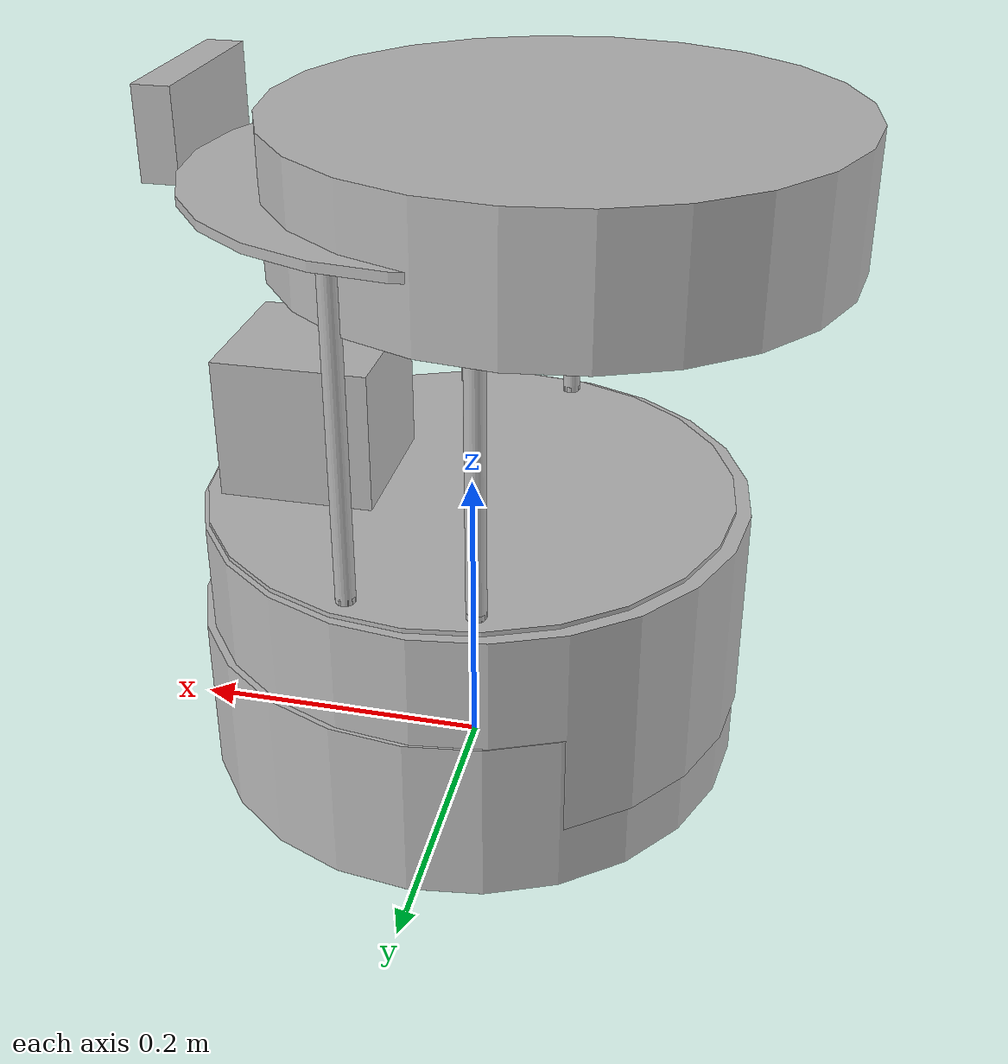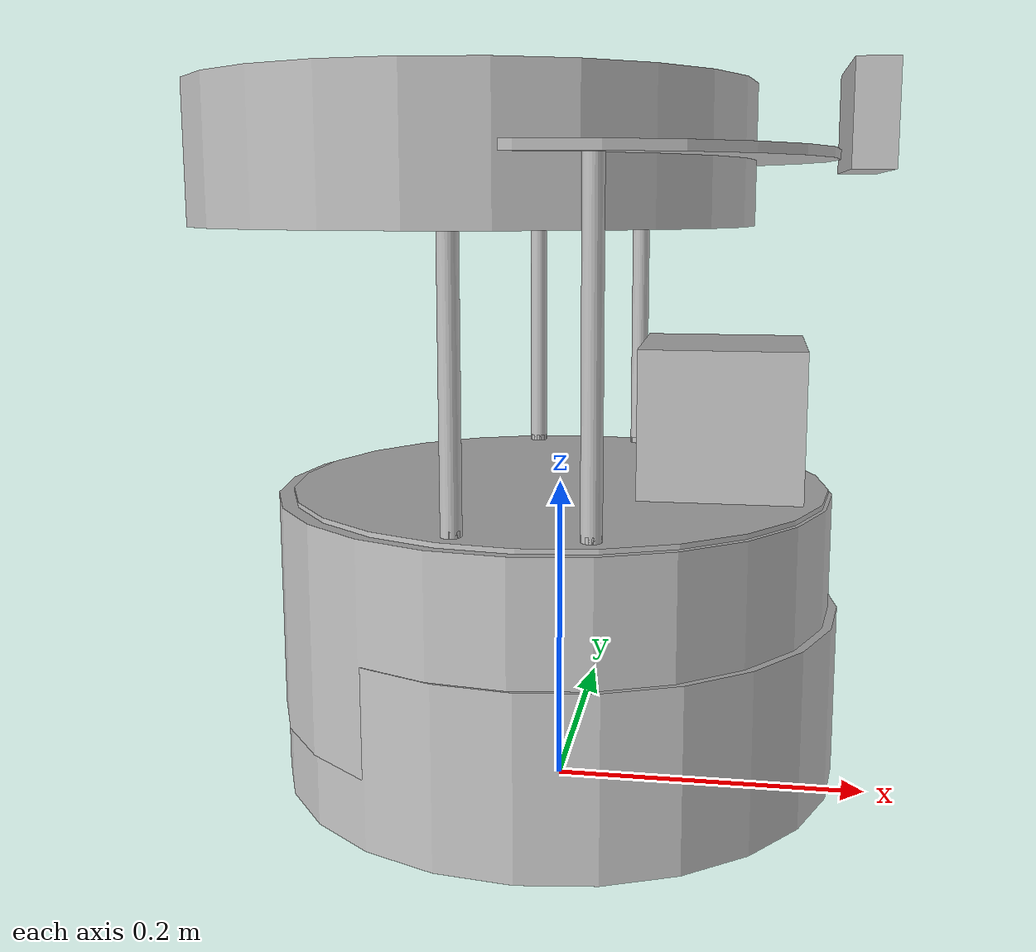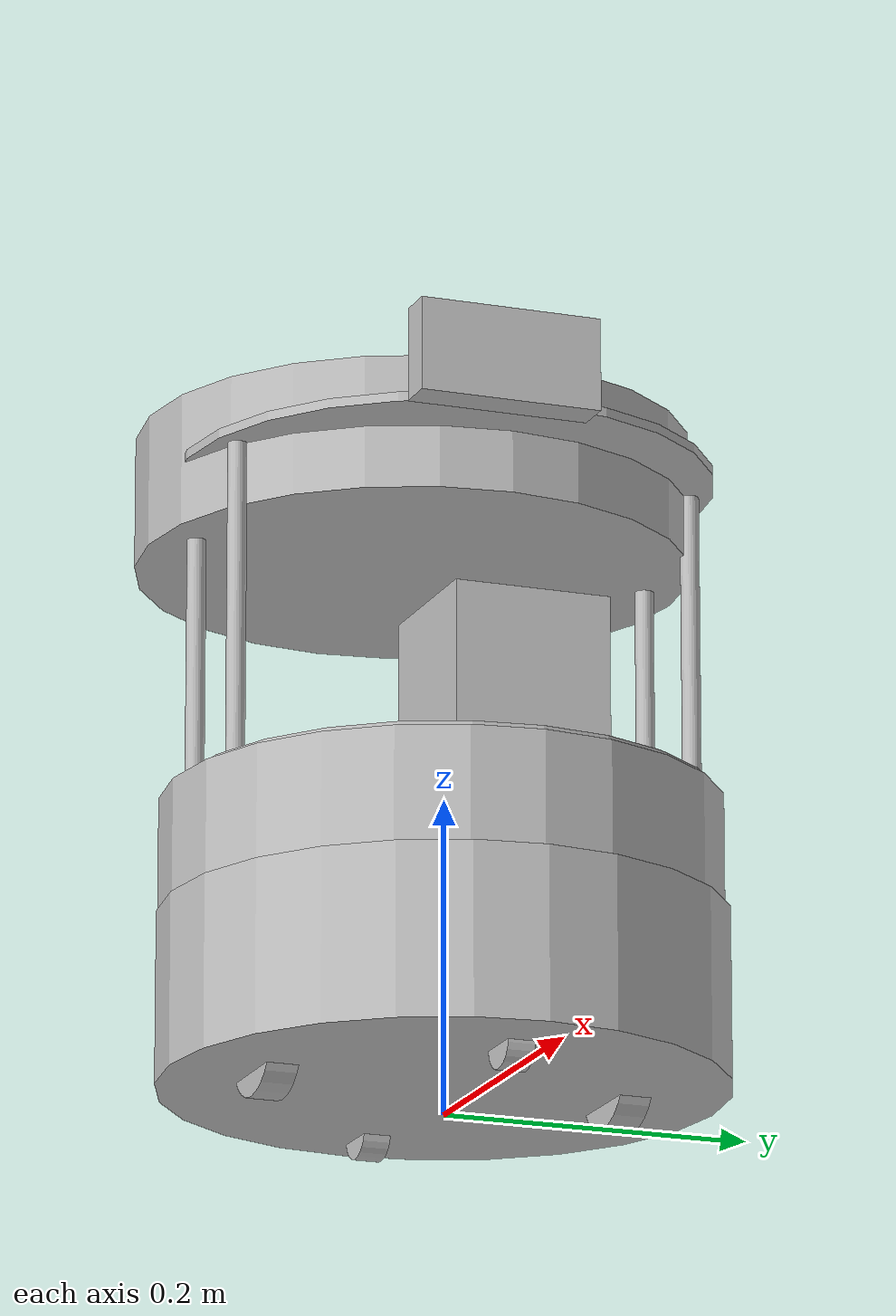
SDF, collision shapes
<?xml version="1.0"?>

<sdf version='1.6'>
  <model name='barista'>

    <plugin name="slotcar" filename="libslotcar.so">

      <nominal_drive_speed>0.5</nominal_drive_speed>
      <nominal_drive_acceleration>0.25</nominal_drive_acceleration>
      <max_drive_acceleration>0.75</max_drive_acceleration>

      <nominal_turn_speed>0.6</nominal_turn_speed>
      <nominal_turn_acceleration>1.5</nominal_turn_acceleration>
      <max_turn_acceleration>2.0</max_turn_acceleration>

      <tire_radius>0.1</tire_radius>
      <base_width>0.3206</base_width>

      <stop_distance>0.75</stop_distance>
      <stop_radius>0.75</stop_radius>

      <!-- Can the robot drive backwards -->
      <reversible>true</reversible>

      <!-- Battery params -->
      <nominal_voltage>12.0</nominal_voltage>
      <nominal_capacity>24.0</nominal_capacity>
      <charging_current>5.0</charging_current>

      <!-- Physical params -->
      <mass>20.0</mass>
      <inertia>10.0</inertia>
      <friction_coefficient>0.22</friction_coefficient>

      <!-- Power systems -->
      <nominal_power>20.0</nominal_power>

    </plugin>
    <link name='base_footprint'>
      <inertial>
        <pose>0.005304 1.4e-05 0.124445 0 -0 0</pose>
        <mass>4.52731</mass>
        <inertia>
          <ixx>0.135182</ixx>
          <ixy>-3.1835e-06</ixy>
          <ixz>0.00493693</ixz>
          <iyy>0.129989</iyy>
          <iyz>5.83077e-06</iyz>
          <izz>0.0713492</izz>
        </inertia>
      </inertial>
      <collision name='base_footprint_fixed_joint_lump__base_link_collision'>
        <pose>0 0 0.06969 0 -0 0</pose>
        <geometry>
          <cylinder>
            <length>0.10938</length>
            <radius>0.178</radius>
          </cylinder>
        </geometry>
        <surface>
          <contact>
            <ode/>
          </contact>
          <friction>
            <ode>
              <mu>0.3</mu>
              <mu2>0.3</mu2>
            </ode>
          </friction>
        </surface>
      </collision>
      <collision name='base_footprint_fixed_joint_lump__caster_back_link_collision_1'>
        <pose>-0.135 0 0.0192 -1.5708 0 0</pose>
        <geometry>
          <cylinder>
            <length>0.0176</length>
            <radius>0.017</radius>
          </cylinder>
        </geometry>
        <surface>
          <contact>
            <ode>
              <kp>1e+06</kp>
              <kd>100</kd>
              <max_vel>1</max_vel>
              <min_depth>0.001</min_depth>
            </ode>
          </contact>
          <friction>
            <ode>
              <mu>0</mu>
              <mu2>0</mu2>
            </ode>
          </friction>
        </surface>
      </collision>
      <collision name='base_footprint_fixed_joint_lump__caster_front_link_collision_2'>
        <pose>0.115 0 0.0172 -1.5708 0 0</pose>
        <geometry>
          <cylinder>
            <length>0.0176</length>
            <radius>0.017</radius>
          </cylinder>
        </geometry>
        <surface>
          <contact>
            <ode>
              <kp>1e+06</kp>
              <kd>100</kd>
              <max_vel>1</max_vel>
              <min_depth>0.001</min_depth>
            </ode>
          </contact>
          <friction>
            <ode>
              <mu>0</mu>
              <mu2>0</mu2>
            </ode>
          </friction>
        </surface>
      </collision>
      <collision name='base_footprint_fixed_joint_lump__plate_bottom_link_collision_3'>
        <pose>0 0 0.1408 0 -0 0</pose>
        <geometry>
          <cylinder>
            <length>0.006</length>
            <radius>0.17</radius>
          </cylinder>
        </geometry>
      </collision>
      <collision name='base_footprint_fixed_joint_lump__plate_middle_link_collision_4'>
        <pose>0 0 0.1976 0 -0 0</pose>
        <geometry>
          <cylinder>
            <length>0.006</length>
            <radius>0.17</radius>
          </cylinder>
        </geometry>
      </collision>
      <collision name='base_footprint_fixed_joint_lump__barista_bottom_link_collision_5'>
        <pose>-0.00364 0 0.1276 0 -0 0</pose>
        <geometry>
          <cylinder>
            <length>0.14</length>
            <radius>0.176002</radius>
          </cylinder>
        </geometry>
      </collision>
      <collision name='base_footprint_fixed_joint_lump__laser_sensor_link_collision_6'>
        <pose>0.103007 0 0.2426 0 -0 0</pose>
        <geometry>
          <box>
            <size>0.1 0.1 0.1</size>
          </box>
        </geometry>
        <surface>
          <contact>
            <ode/>
          </contact>
          <friction>
            <ode/>
          </friction>
        </surface>
      </collision>
      <collision name='base_footprint_fixed_joint_lump__plate_top_link_collision_7'>
        <pose>0 0 0.4068 0 -0 0</pose>
        <geometry>
          <cylinder>
            <length>0.006</length>
            <radius>0.17</radius>
          </cylinder>
        </geometry>
      </collision>
      <collision name='base_footprint_fixed_joint_lump__barista_top_link_collision_8'>
        <pose>-0.05614 0 0.4068 0 -0 0</pose>
        <geometry>
          <cylinder>
            <length>0.085</length>
            <radius>0.176002</radius>
          </cylinder>
        </geometry>
      </collision>
      <collision name='base_footprint_fixed_joint_lump__barista_bowtie_link_collision_9'>
        <pose>0.182189 -0.029498 0.42554 0 -0 1.57</pose>
        <geometry>
          <box>
            <size>0.115703 0.024221 0.058996</size>
          </box>
        </geometry>
      </collision>
      <collision name='base_footprint_fixed_joint_lump__pole_bottom_0_link_collision_10'>
        <pose>0.12 0.082 0.113 0 -0 0</pose>
        <geometry>
          <cylinder>
            <length>0.0492</length>
            <radius>0.006</radius>
          </cylinder>
        </geometry>
      </collision>
      <collision name='base_footprint_fixed_joint_lump__pole_bottom_1_link_collision_11'>
        <pose>0.055 0.12 0.113 0 -0 0</pose>
        <geometry>
          <cylinder>
            <length>0.0492</length>
            <radius>0.006</radius>
          </cylinder>
        </geometry>
      </collision>
      <collision name='base_footprint_fixed_joint_lump__pole_bottom_2_link_collision_12'>
        <pose>-0.055 0.12 0.113 0 -0 0</pose>
        <geometry>
          <cylinder>
            <length>0.0492</length>
            <radius>0.006</radius>
          </cylinder>
        </geometry>
      </collision>
      <collision name='base_footprint_fixed_joint_lump__pole_bottom_3_link_collision_13'>
        <pose>0.12 -0.082 0.113 0 -0 0</pose>
        <geometry>
          <cylinder>
            <length>0.0492</length>
            <radius>0.006</radius>
          </cylinder>
        </geometry>
      </collision>
      <collision name='base_footprint_fixed_joint_lump__pole_bottom_4_link_collision_14'>
        <pose>0.055 -0.12 0.113 0 -0 0</pose>
        <geometry>
          <cylinder>
            <length>0.0492</length>
            <radius>0.006</radius>
          </cylinder>
        </geometry>
      </collision>
      <collision name='base_footprint_fixed_joint_lump__pole_bottom_5_link_collision_15'>
        <pose>-0.055 -0.12 0.113 0 -0 0</pose>
        <geometry>
          <cylinder>
            <length>0.0492</length>
            <radius>0.006</radius>
          </cylinder>
        </geometry>
      </collision>
      <collision name='base_footprint_fixed_joint_lump__pole_middle_0_link_collision_16'>
        <pose>0.0381 0.1505 0.1742 0 -0 0</pose>
        <geometry>
          <cylinder>
            <length>0.0608</length>
            <radius>0.006</radius>
          </cylinder>
        </geometry>
      </collision>
      <collision name='base_footprint_fixed_joint_lump__pole_middle_1_link_collision_17'>
        <pose>0.0381 -0.1505 0.1742 0 -0 0</pose>
        <geometry>
          <cylinder>
            <length>0.0608</length>
            <radius>0.006</radius>
          </cylinder>
        </geometry>
      </collision>
      <collision name='base_footprint_fixed_joint_lump__pole_middle_2_link_collision_18'>
        <pose>-0.0381 0.1505 0.1742 0 -0 0</pose>
        <geometry>
          <cylinder>
            <length>0.0608</length>
            <radius>0.006</radius>
          </cylinder>
        </geometry>
      </collision>
      <collision name='base_footprint_fixed_joint_lump__pole_middle_3_link_collision_19'>
        <pose>-0.0381 -0.1505 0.1742 0 -0 0</pose>
        <geometry>
          <cylinder>
            <length>0.0608</length>
            <radius>0.006</radius>
          </cylinder>
        </geometry>
      </collision>
      <collision name='base_footprint_fixed_joint_lump__pole_top_0_link_collision_20'>
        <pose>0.0381 0.1505 0.3022 0 -0 0</pose>
        <geometry>
          <cylinder>
            <length>0.2032</length>
            <radius>0.006</radius>
          </cylinder>
        </geometry>
      </collision>
      <collision name='base_footprint_fixed_joint_lump__pole_top_1_link_collision_21'>
        <pose>0.0381 -0.1505 0.3022 0 -0 0</pose>
        <geometry>
          <cylinder>
            <length>0.2032</length>
            <radius>0.006</radius>
          </cylinder>
        </geometry>
      </collision>
      <collision name='base_footprint_fixed_joint_lump__pole_top_2_link_collision_22'>
        <pose>-0.0381 0.1505 0.3022 0 -0 0</pose>
        <geometry>
          <cylinder>
            <length>0.2032</length>
            <radius>0.006</radius>
          </cylinder>
        </geometry>
      </collision>
      <collision name='base_footprint_fixed_joint_lump__pole_top_3_link_collision_23'>
        <pose>-0.0381 -0.1505 0.3022 0 -0 0</pose>
        <geometry>
          <cylinder>
            <length>0.2032</length>
            <radius>0.006</radius>
          </cylinder>
        </geometry>
      </collision>
      <visual name='base_footprint_fixed_joint_lump__base_link_visual'>
        <pose>0.001 0 0.06219 0 -0 0</pose>
        <geometry>
          <mesh>
            <scale>1 1 1</scale>
            <uri>model://barista_description/meshes/main_body.dae</uri>
          </mesh>
        </geometry>
      </visual>
      <visual name='base_footprint_fixed_joint_lump__plate_bottom_link_visual_1'>
        <pose>0.02364 0 0.1408 0 -0 0</pose>
        <geometry>
          <mesh>
            <scale>1 1 1</scale>
            <uri>model://barista_description/meshes/stacks/hexagons/plate_bottom.dae</uri>
          </mesh>
        </geometry>
      </visual>
      <visual name='base_footprint_fixed_joint_lump__plate_middle_link_visual_2'>
        <pose>-0.01364 0 0.1976 0 -0 0</pose>
        <geometry>
          <mesh>
            <scale>1 1 1</scale>
            <uri>model://barista_description/meshes/stacks/hexagons/plate_middle.dae</uri>
          </mesh>
        </geometry>
      </visual>
      <visual name='base_footprint_fixed_joint_lump__barista_bottom_link_visual_3'>
        <pose>-0.00364 0 0.1976 0 -0 0</pose>
        <geometry>
          <mesh>
            <scale>1 1 1</scale>
            <uri>model://barista_description/meshes/barista/BOTTOM_colour.dae</uri>
          </mesh>
        </geometry>
      </visual>
      <visual name='base_footprint_fixed_joint_lump__laser_sensor_link_visual_4'>
        <pose>0.103007 0 0.2426 0 -0 0</pose>
        <geometry>
          <mesh>
            <scale>1 1 1</scale>
            <uri>model://barista_description/meshes/sensors/hokuyo.dae</uri>
          </mesh>
        </geometry>
      </visual>
      <visual name='base_footprint_fixed_joint_lump__plate_top_link_visual_5'>
        <pose>-0.01364 0 0.4068 0 -0 0</pose>
        <geometry>
          <mesh>
            <scale>1 1 1</scale>
            <uri>model://barista_description/meshes/stacks/hexagons/plate_top.dae</uri>
          </mesh>
        </geometry>
      </visual>
      <visual name='base_footprint_fixed_joint_lump__barista_top_link_visual_6'>
        <pose>-0.01364 0 0.4068 0 -0 0</pose>
        <geometry>
          <mesh>
            <scale>1 1 1</scale>
            <uri>model://barista_description/meshes/barista/TOP_colour.dae</uri>
          </mesh>
        </geometry>
      </visual>
      <visual name='base_footprint_fixed_joint_lump__barista_bowtie_link_visual_7'>
        <pose>0.182212 0 0.42554 0 -0 1.57</pose>
        <geometry>
          <mesh>
            <scale>1 1 1</scale>
            <uri>model://barista_description/meshes/barista/bowtie_fixed_colour.dae</uri>
          </mesh>
        </geometry>
      </visual>
      <visual name='base_footprint_fixed_joint_lump__pole_bottom_0_link_visual_8'>
        <pose>0.12 0.082 0.113 0 -0 0</pose>
        <geometry>
          <mesh>
            <scale>1 1 1</scale>
            <uri>model://barista_description/meshes/stacks/hexagons/pole_bottom.dae</uri>
          </mesh>
        </geometry>
      </visual>
      <visual name='base_footprint_fixed_joint_lump__pole_bottom_1_link_visual_9'>
        <pose>0.055 0.12 0.113 0 -0 0</pose>
        <geometry>
          <mesh>
            <scale>1 1 1</scale>
            <uri>model://barista_description/meshes/stacks/hexagons/pole_bottom.dae</uri>
          </mesh>
        </geometry>
      </visual>
      <visual name='base_footprint_fixed_joint_lump__pole_bottom_2_link_visual_10'>
        <pose>-0.055 0.12 0.113 0 -0 0</pose>
        <geometry>
          <mesh>
            <scale>1 1 1</scale>
            <uri>model://barista_description/meshes/stacks/hexagons/pole_bottom.dae</uri>
          </mesh>
        </geometry>
      </visual>
      <visual name='base_footprint_fixed_joint_lump__pole_bottom_3_link_visual_11'>
        <pose>0.12 -0.082 0.113 0 -0 0</pose>
        <geometry>
          <mesh>
            <scale>1 1 1</scale>
            <uri>model://barista_description/meshes/stacks/hexagons/pole_bottom.dae</uri>
          </mesh>
        </geometry>
      </visual>
      <visual name='base_footprint_fixed_joint_lump__pole_bottom_4_link_visual_12'>
        <pose>0.055 -0.12 0.113 0 -0 0</pose>
        <geometry>
          <mesh>
            <scale>1 1 1</scale>
            <uri>model://barista_description/meshes/stacks/hexagons/pole_bottom.dae</uri>
          </mesh>
        </geometry>
      </visual>
      <visual name='base_footprint_fixed_joint_lump__pole_bottom_5_link_visual_13'>
        <pose>-0.055 -0.12 0.113 0 -0 0</pose>
        <geometry>
          <mesh>
            <scale>1 1 1</scale>
            <uri>model://barista_description/meshes/stacks/hexagons/pole_bottom.dae</uri>
          </mesh>
        </geometry>
      </visual>
      <visual name='base_footprint_fixed_joint_lump__pole_middle_0_link_visual_14'>
        <pose>0.0381 0.1505 0.1742 3.14159 0 3.14159</pose>
        <geometry>
          <mesh>
            <scale>1 1 1</scale>
            <uri>model://barista_description/meshes/stacks/hexagons/pole_middle.dae</uri>
          </mesh>
        </geometry>
      </visual>
      <visual name='base_footprint_fixed_joint_lump__pole_middle_1_link_visual_15'>
        <pose>0.0381 -0.1505 0.1742 3.14159 0 3.14159</pose>
        <geometry>
          <mesh>
            <scale>1 1 1</scale>
            <uri>model://barista_description/meshes/stacks/hexagons/pole_middle.dae</uri>
          </mesh>
        </geometry>
      </visual>
      <visual name='base_footprint_fixed_joint_lump__pole_middle_2_link_visual_16'>
        <pose>-0.0381 0.1505 0.1742 3.14159 0 3.14159</pose>
        <geometry>
          <mesh>
            <scale>1 1 1</scale>
            <uri>model://barista_description/meshes/stacks/hexagons/pole_middle.dae</uri>
          </mesh>
        </geometry>
      </visual>
      <visual name='base_footprint_fixed_joint_lump__pole_middle_3_link_visual_17'>
        <pose>-0.0381 -0.1505 0.1742 3.14159 0 3.14159</pose>
        <geometry>
          <mesh>
            <scale>1 1 1</scale>
            <uri>model://barista_description/meshes/stacks/hexagons/pole_middle.dae</uri>
          </mesh>
        </geometry>
      </visual>
      <visual name='base_footprint_fixed_joint_lump__pole_top_0_link_visual_18'>
        <pose>0.0381 0.1505 0.3022 0 -0 0</pose>
        <geometry>
          <mesh>
            <scale>1 1 1</scale>
            <uri>model://barista_description/meshes/stacks/hexagons/pole_top.dae</uri>
          </mesh>
        </geometry>
      </visual>
      <visual name='base_footprint_fixed_joint_lump__pole_top_1_link_visual_19'>
        <pose>0.0381 -0.1505 0.3022 0 -0 0</pose>
        <geometry>
          <mesh>
            <scale>1 1 1</scale>
            <uri>model://barista_description/meshes/stacks/hexagons/pole_top.dae</uri>
          </mesh>
        </geometry>
      </visual>
      <visual name='base_footprint_fixed_joint_lump__pole_top_2_link_visual_20'>
        <pose>-0.0381 0.1505 0.3022 0 -0 0</pose>
        <geometry>
          <mesh>
            <scale>1 1 1</scale>
            <uri>model://barista_description/meshes/stacks/hexagons/pole_top.dae</uri>
          </mesh>
        </geometry>
      </visual>
      <visual name='base_footprint_fixed_joint_lump__pole_top_3_link_visual_21'>
        <pose>-0.0381 -0.1505 0.3022 0 -0 0</pose>
        <geometry>
          <mesh>
            <scale>1 1 1</scale>
            <uri>model://barista_description/meshes/stacks/hexagons/pole_top.dae</uri>
          </mesh>
        </geometry>
      </visual>
      <sensor name='bumpers' type='contact'>
        <always_on>1</always_on>
        <update_rate>50</update_rate>
        <visualize>1</visualize>
        <contact>
          <collision>base_footprint_collision_base_link</collision>
          <topic>__default_topic__</topic>
        </contact>
        <pose>0 0 0.0102 0 -0 0</pose>
      </sensor>
      <sensor name='cliff_sensor_front' type='ray'>
        <always_on>1</always_on>
        <update_rate>50</update_rate>
        <visualize>1</visualize>
        <ray>
          <scan>
            <horizontal>
              <samples>50</samples>
              <resolution>1</resolution>
              <min_angle>-0.0436</min_angle>
              <max_angle>0.0436</max_angle>
            </horizontal>
          </scan>
          <range>
            <min>0.01</min>
            <max>0.15</max>
            <resolution>1</resolution>
          </range>
        </ray>
        <pose>0.156 0 0.0316 3.14159 1.57079 3.14159</pose>
      </sensor>
      <sensor name='cliff_sensor_left' type='ray'>
        <always_on>1</always_on>
        <update_rate>50</update_rate>
        <visualize>1</visualize>
        <ray>
          <scan>
            <horizontal>
              <samples>50</samples>
              <resolution>1</resolution>
              <min_angle>-0.0436</min_angle>
              <max_angle>0.0436</max_angle>
            </horizontal>
          </scan>
          <range>
            <min>0.01</min>
            <max>0.15</max>
            <resolution>1</resolution>
          </range>
        </ray>
        <pose>0.08734 0.13601 0.0316 3.14159 1.57079 3.14159</pose>
      </sensor>
      <sensor name='cliff_sensor_right' type='ray'>
        <always_on>1</always_on>
        <update_rate>50</update_rate>
        <visualize>1</visualize>
        <ray>
          <scan>
            <horizontal>
              <samples>50</samples>
              <resolution>1</resolution>
              <min_angle>-0.0436</min_angle>
              <max_angle>0.0436</max_angle>
            </horizontal>
          </scan>
          <range>
            <min>0.01</min>
            <max>0.15</max>
            <resolution>1</resolution>
          </range>
        </ray>
        <pose>0.085 -0.13601 0.0316 3.14159 1.57079 3.14159</pose>
      </sensor>
      <sensor name='imu' type='imu'>
        <always_on>1</always_on>
        <update_rate>50</update_rate>
        <visualize>0</visualize>
        <imu>
          <noise>
            <type>gaussian</type>
            <rate>
              <mean>0.0</mean>
              <stddev>1.96e-06</stddev>
              <bias_mean>0.0</bias_mean>
              <bias_stddev>0.0</bias_stddev>
            </rate>
            <accel>
              <mean>0.0</mean>
              <stddev>1.7e-2</stddev>
              <bias_mean>0.1</bias_mean>
              <bias_stddev>0.001</bias_stddev>
            </accel>
          </noise>
        </imu>
        <pose>0.056 0.062 0.0304 0 -0 0</pose>
      </sensor>
      <sensor name='lidar' type='ray'>
        <always_on>1</always_on>
        <visualize>0</visualize>
        <update_rate>20</update_rate>
        <ray>
          <scan>
            <horizontal>
              <samples>360</samples>
              <resolution>1</resolution>
              <min_angle>0</min_angle>
              <max_angle>6.28</max_angle>
            </horizontal>
          </scan>
          <range>
            <min>0.12</min>
            <max>3.5</max>
            <resolution>0.015</resolution>
          </range>
          <noise>
            <type>gaussian</type>
            <mean>0</mean>
            <stddev>0.01</stddev>
          </noise>
        </ray>
        <plugin name='scan' filename='libgazebo_ros_ray_sensor.so'>
          <ros>
            <remapping>~/out:=scan</remapping>
          </ros>
          <output_type>sensor_msgs/LaserScan</output_type>
          <frame_name>laser_sensor_link</frame_name>
        </plugin>
        <pose>0.103007 0 0.2426 0 -0 0</pose>
      </sensor>
    </link>
    <joint name='joint_tire_left' type='revolute'>
      <pose relative_to='base_footprint'>0 0.115 0.0352 -1.5708 0 0</pose>
      <parent>base_footprint</parent>
      <child>wheel_left_link</child>
      <axis>
        <xyz>0 0 1</xyz>
        <limit>
          <lower>-1e+16</lower>
          <upper>1e+16</upper>
        </limit>
        <dynamics>
          <spring_reference>0</spring_reference>
          <spring_stiffness>0</spring_stiffness>
        </dynamics>
      </axis>
    </joint>
    <link name='wheel_left_link'>
      <pose relative_to='joint_tire_left'>0 0 0 0 -0 0</pose>
      <inertial>
        <pose>0 0 0 0 -0 0</pose>
        <mass>0.01</mass>
        <inertia>
          <ixx>0.001</ixx>
          <ixy>0</ixy>
          <ixz>0</ixz>
          <iyy>0.001</iyy>
          <iyz>0</iyz>
          <izz>0.001</izz>
        </inertia>
      </inertial>
      <collision name='wheel_left_link_collision'>
        <pose>0 0 0 0 -0 0</pose>
        <geometry>
          <cylinder>
            <length>0.0206</length>
            <radius>0.0352</radius>
          </cylinder>
        </geometry>
        <surface>
          <contact>
            <ode>
              <kp>1e+06</kp>
              <kd>100</kd>
              <max_vel>1</max_vel>
              <min_depth>0.001</min_depth>
            </ode>
          </contact>
          <friction>
            <ode>
              <mu>1</mu>
              <mu2>1</mu2>
            </ode>
          </friction>
        </surface>
      </collision>
      <visual name='wheel_left_link_visual'>
        <pose>0 0 0 0 -0 0</pose>
        <geometry>
          <mesh>
            <scale>1 1 1</scale>
            <uri>model://barista_description/meshes/wheel.dae</uri>
          </mesh>
        </geometry>
      </visual>
    </link>
    <joint name='joint_tire_right' type='revolute'>
      <pose relative_to='base_footprint'>0 -0.115 0.0352 -1.5708 0 0</pose>
      <parent>base_footprint</parent>
      <child>wheel_right_link</child>
      <axis>
        <xyz>0 0 1</xyz>
        <limit>
          <lower>-1e+16</lower>
          <upper>1e+16</upper>
        </limit>
        <dynamics>
          <spring_reference>0</spring_reference>
          <spring_stiffness>0</spring_stiffness>
        </dynamics>
      </axis>
    </joint>
    <link name='wheel_right_link'>
      <pose relative_to='joint_tire_right'>0 0 0 0 -0 0</pose>
      <inertial>
        <pose>0 0 0 0 -0 0</pose>
        <mass>0.01</mass>
        <inertia>
          <ixx>0.001</ixx>
          <ixy>0</ixy>
          <ixz>0</ixz>
          <iyy>0.001</iyy>
          <iyz>0</iyz>
          <izz>0.001</izz>
        </inertia>
      </inertial>
      <collision name='wheel_right_link_collision'>
        <pose>0 0 0 0 -0 0</pose>
        <geometry>
          <cylinder>
            <length>0.0206</length>
            <radius>0.035</radius>
          </cylinder>
        </geometry>
        <surface>
          <contact>
            <ode>
              <kp>1e+06</kp>
              <kd>100</kd>
              <max_vel>1</max_vel>
              <min_depth>0.001</min_depth>
            </ode>
          </contact>
          <friction>
            <ode>
              <mu>1</mu>
              <mu2>1</mu2>
            </ode>
          </friction>
        </surface>
      </collision>
      <visual name='wheel_right_link_visual'>
        <pose>0 0 0 0 -0 0</pose>
        <geometry>
          <mesh>
            <scale>1 1 1</scale>
            <uri>model://barista_description/meshes/wheel.dae</uri>
          </mesh>
        </geometry>
      </visual>
    </link>
  </model>
</sdf>
